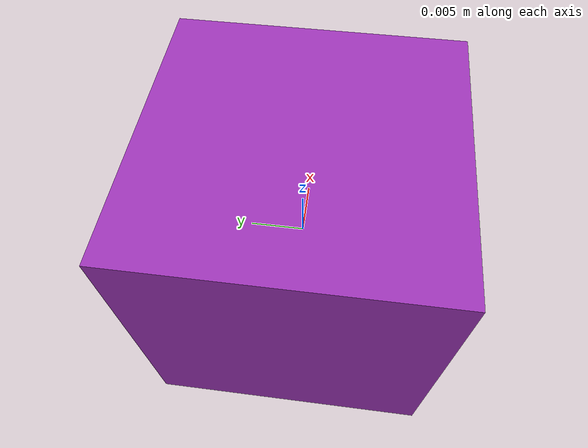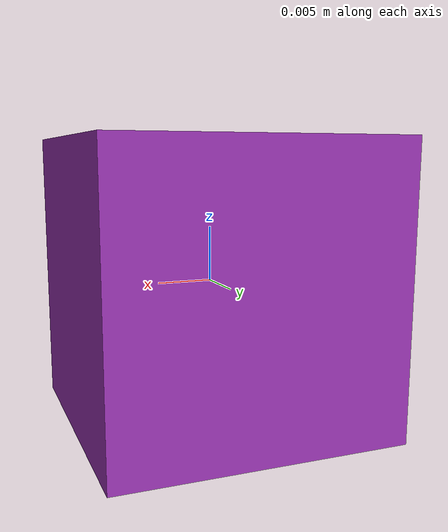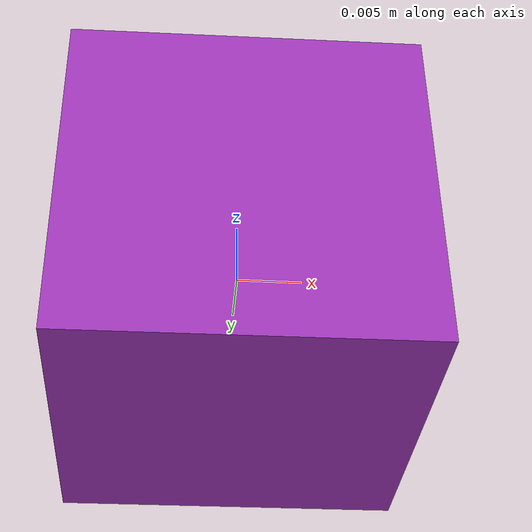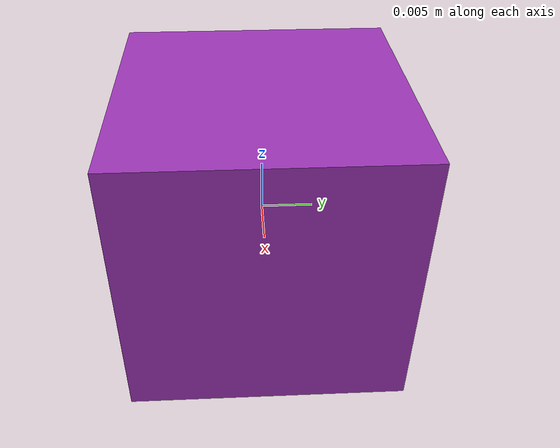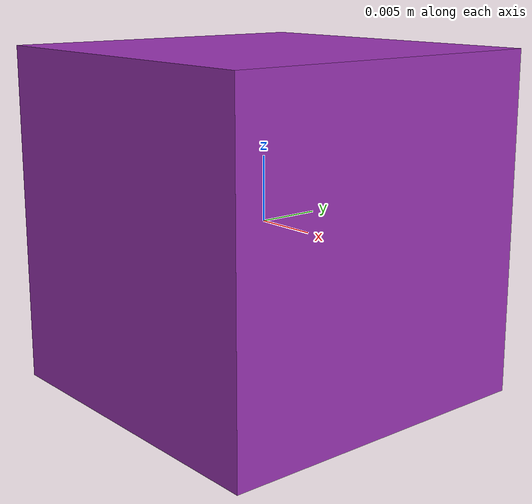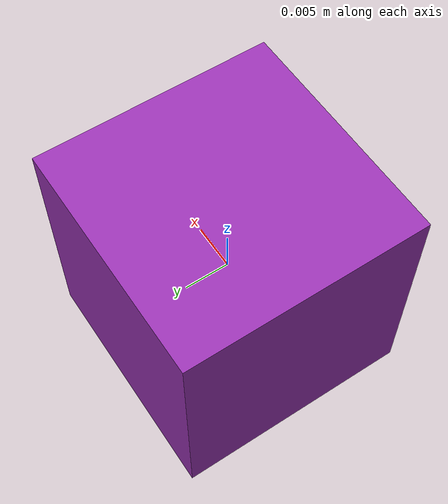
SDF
<?xml version='1.0'?>
<sdf version='1.6'>
  <model name='cube_small'>
    <link name='link'>
      <inertial>
        <mass>0.0844</mass>
        <inertia>
          <ixx>0.000047</ixx> <ixy>0</ixy> <ixz>0</ixz>
          <iyy>0.000047</iyy> <iyz>0</iyz>
          <izz>0.000047</izz>
        </inertia>
      </inertial>
      <visual name='visual'>
        <geometry>
          <box><size>0.026250 0.026250 0.026250</size></box>
        </geometry>
        <material><script><name>Gazebo/Purple</name></script></material>
      </visual>
      <collision name='collision'>
        <geometry>
          <box><size>0.026250 0.026250 0.026250</size></box>
        </geometry>
        <surface>
          <friction>
            <ode>
              <mu>100.0</mu> <mu2>100.0</mu2>
            </ode>
          </friction>
          <contact>
            <ode>
              <kp>100000.0</kp> <kd>1.0</kd>
              <min_depth>0.001</min_depth>
            </ode>
          </contact>
        </surface>
      </collision>
    </link>
  </model>
</sdf>
